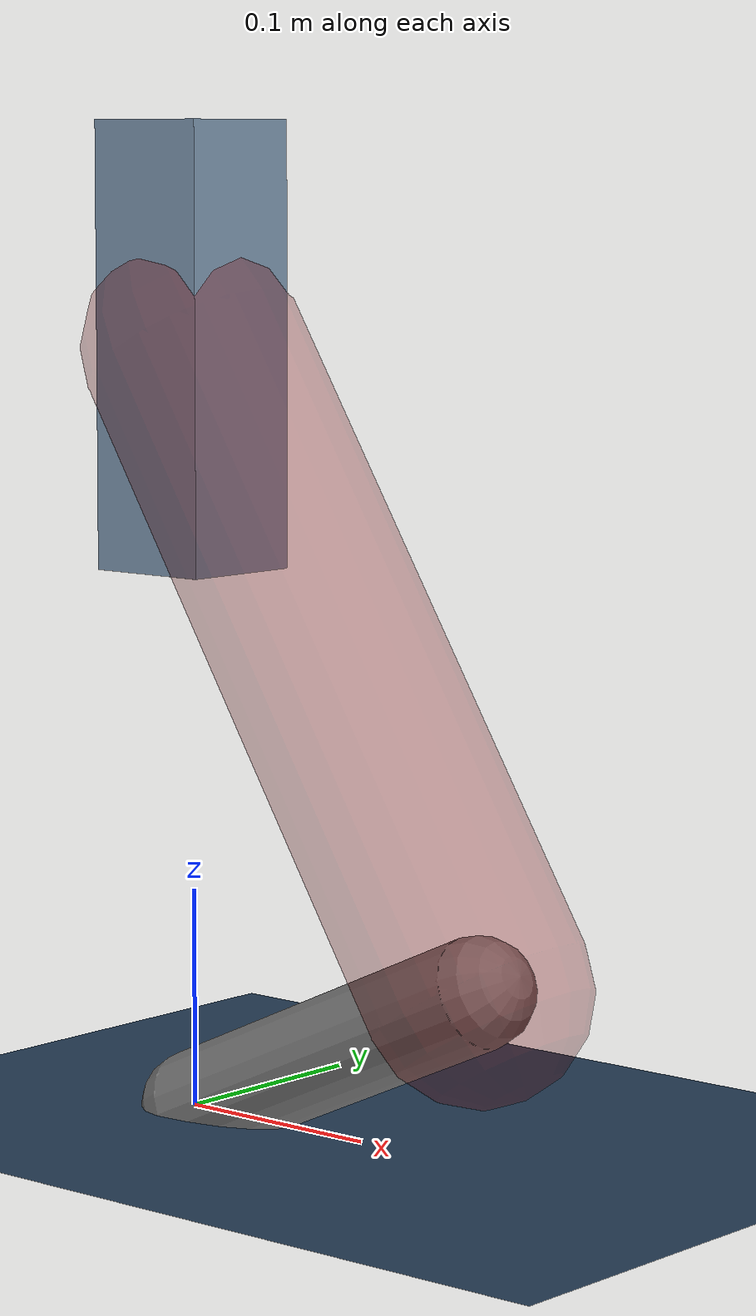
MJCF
<mujoco model="Hopper2D">
	<compiler inertiafromgeom="true" angle="radian" />
	<option timestep="0.001" integrator="implicit" cone="elliptic" solver="Newton" tolerance="1e-10" />

	<default>
		<geom contype="1" conaffinity="1" condim="3" friction="2 0.005 0.0001" solref="0.005 1" />
		<joint limited="true" damping="0.1" />
	</default>

	<asset>
		<texture name="skybox" type="skybox" builtin="gradient" rgb1=".4 .6 .8" rgb2="0 0 0" width="800" height="800" />
		<texture name="grid" type="2d" builtin="checker" rgb1=".1 .2 .3" rgb2=".2 .3 .4" width="300" height="300" mark="edge" markrgb=".2 .3 .4" />
		<material name="ground" texture="grid" texrepeat="1 1" texuniform="true" reflectance="0.1" />
		<material name="leg" rgba="0.5 0.6 0.7 1" />
	</asset>

	<worldbody>

		<geom name="floor" type="plane" size="5 5 0.25" material="ground" />

		<light directional="false" diffuse="0.8 0.8 0.8" specular="0.3 0.3 0.3" pos="0 0 2" dir="0 0 -1" />
		<light mode="targetbodycom" target="base" directional="false" diffuse="0.8 0.8 0.8" specular="0.3 0.3 0.3" pos="0 0 2" dir="0 0 -1" />

		<camera name="fixed" pos="0 -2 1" xyaxes="1 0 0 0 0 1" />
		<camera name="tracking" mode="trackcom" pos="0 -3 1" />

		<body name="root" pos="0 0 0.34663933082718623">
			<joint name="slide_x" type="slide" axis="1 0 0" range="-100 100" />
			<joint name="slide_z" type="slide" axis="0 0 1" range="0 10" />

			<body name="base" pos="0 0 0">
				<geom name="torso" type="box" size="0.03 0.03 0.1" mass="1.794" material="leg" />

				<body name="link1" pos="0 0 0" euler="0 1.0182583339519078 0">
					<joint type="hinge" axis="0 -1 0" pos="0 0 0" name="hinge1" limited="true" range="-3.14 3.14" stiffness="0" damping="0.1" />
					<geom name="thigh" type="capsule" fromto="0 0 0 0.31717118521113435 0 0" size="0.05" rgba="0.5 0 0 0.3" mass="1.0354793185911761" />

					<body name="link2" pos="0.31717118521113435 0 0" euler="0 1.6917499706954255 0">
						<joint type="hinge" axis="0 -1 0" pos="0 0 0" name="hinge2" limited="true" range="-3.14 3.14" stiffness="0" damping="0.1" />
						<geom name="shank" type="capsule" fromto="0 0 0 0.1832723748481575 0 0" size="0.025" mass="0.386717899878526" />

					</body>
				</body>
			</body>
		</body>
	</worldbody>

	<actuator>
		<motor name="torque1" joint="hinge1" ctrlrange="-30.33666391069153 30.33666391069153" ctrllimited="true" gear="1" />
		<motor name="torque2" joint="hinge2" ctrlrange="-12.448288316340452 12.448288316340452" ctrllimited="true" gear="1" />
	</actuator>
</mujoco>
